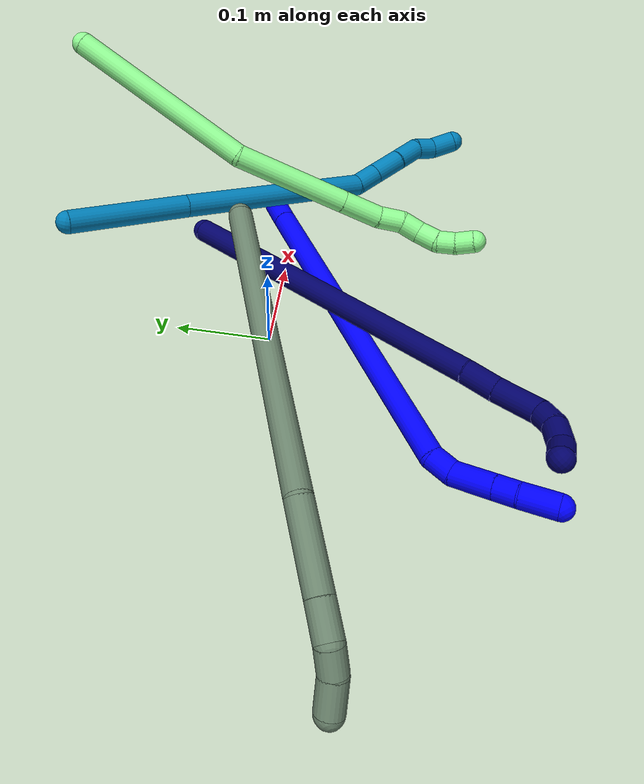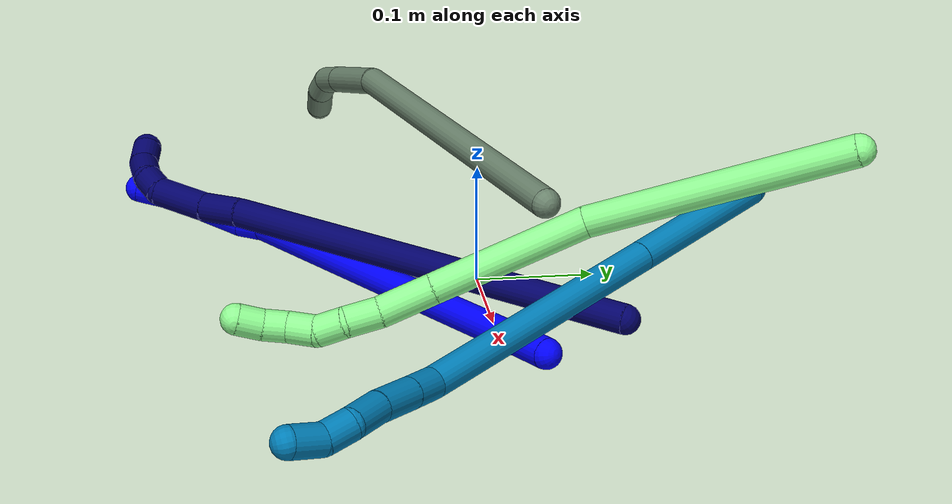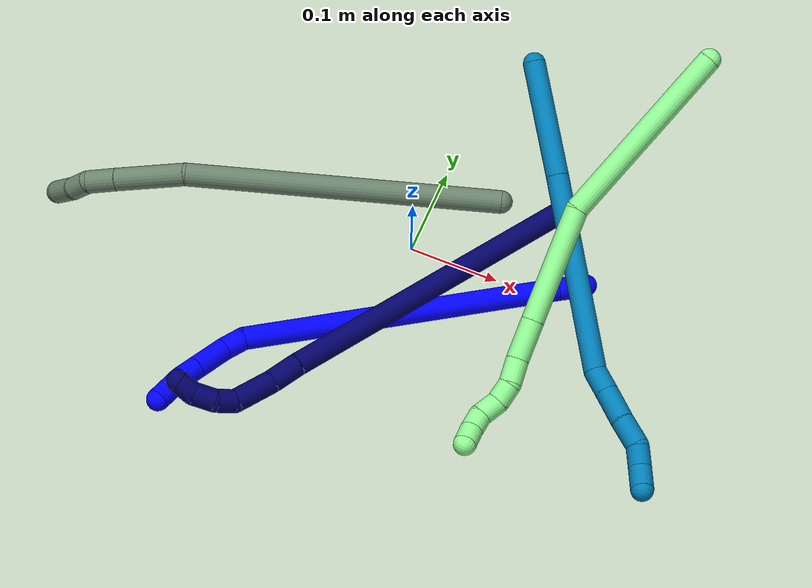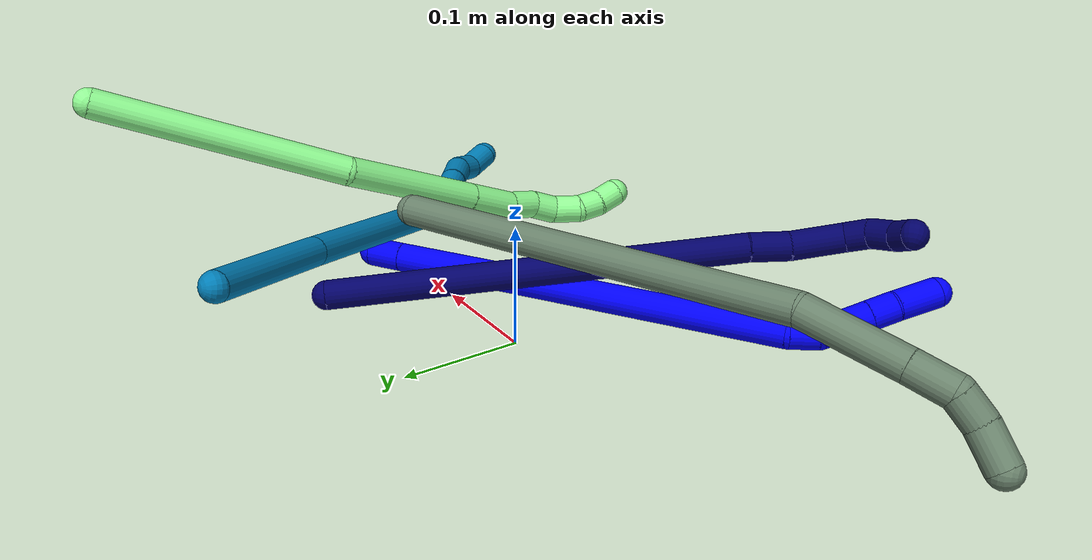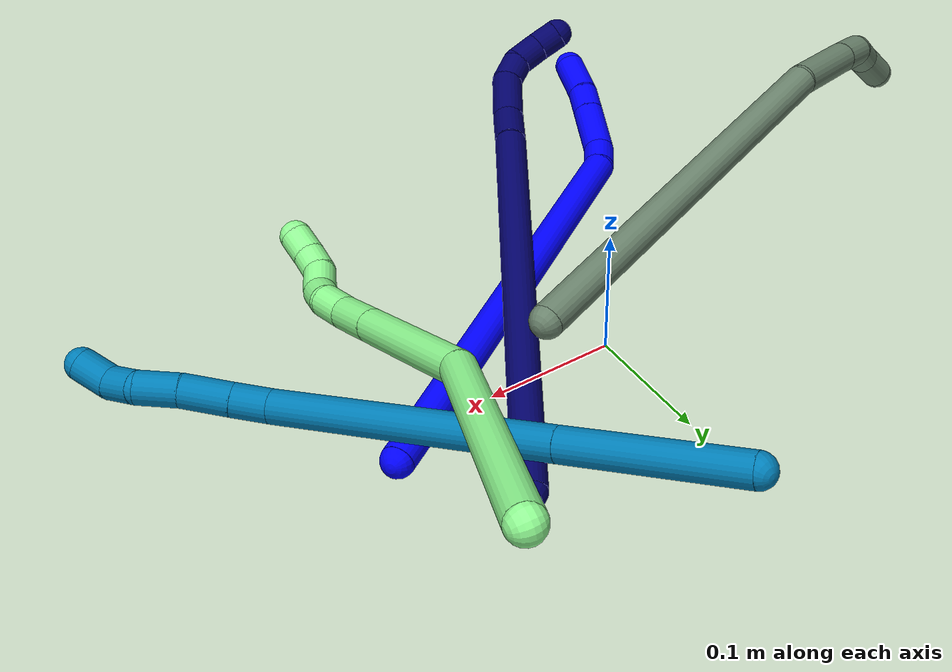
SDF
<sdf version="1.7">
 <world name="default">
  <model name="1">
   <static>0</static>
   <link name="1">
    <collision name="collision-cylinder-e_1_1_4">
     <pose>-0.002743 -0.00276 0.014344 0.190089 -0.18565 -0.017749</pose>
     <geometry><cylinder><radius>0.0125</radius><length>0.029725</length></cylinder></geometry>
     <surface>
      <friction><ode><mu>1.16</mu><mu2>1.16</mu2><slip1>0</slip1><slip2>0</slip2></ode></friction>
      <contact><ode><kp>1e+06</kp><kd>1</kd><max_vel>0</max_vel><min_depth>0.001</min_depth></ode></contact>
     </surface>
    </collision>
    <visual name="visual-cylinder-e_1_1_4">
     <pose>-0.002743 -0.00276 0.014344 0.190089 -0.18565 -0.017749</pose>
     <geometry><cylinder><radius>0.0125</radius><length>0.029725</length></cylinder></geometry>
     <material><ambient>0 0 1 1</ambient></material>
    </visual>
    <collision name="collision-cylinder-e_2_4_5">
     <pose>-0.038014 -0.034266 0.1955 0.170651 -0.189849 -0.016287</pose>
     <geometry><cylinder><radius>0.0125</radius><length>0.344736</length></cylinder></geometry>
     <surface>
      <friction><ode><mu>1.16</mu><mu2>1.16</mu2><slip1>0</slip1><slip2>0</slip2></ode></friction>
      <contact><ode><kp>1e+06</kp><kd>1</kd><max_vel>0</max_vel><min_depth>0.001</min_depth></ode></contact>
     </surface>
    </collision>
    <visual name="visual-cylinder-e_2_4_5">
     <pose>-0.038014 -0.034266 0.1955 0.170651 -0.189849 -0.016287</pose>
     <geometry><cylinder><radius>0.0125</radius><length>0.344736</length></cylinder></geometry>
     <material><ambient>0 0 1 1</ambient></material>
    </visual>
    <collision name="collision-cylinder-e_3_5_6">
     <pose>-0.074995 -0.061078 0.373693 -0.168332 -0.368171 0.031414</pose>
     <geometry><cylinder><radius>0.0125</radius><length>0.024744</length></cylinder></geometry>
     <surface>
      <friction><ode><mu>1.16</mu><mu2>1.16</mu2><slip1>0</slip1><slip2>0</slip2></ode></friction>
      <contact><ode><kp>1e+06</kp><kd>1</kd><max_vel>0</max_vel><min_depth>0.001</min_depth></ode></contact>
     </surface>
    </collision>
    <visual name="visual-cylinder-e_3_5_6">
     <pose>-0.074995 -0.061078 0.373693 -0.168332 -0.368171 0.031414</pose>
     <geometry><cylinder><radius>0.0125</radius><length>0.024744</length></cylinder></geometry>
     <material><ambient>0 0 1 1</ambient></material>
    </visual>
    <collision name="collision-cylinder-e_4_6_7">
     <pose>-0.093883 -0.055269 0.400102 -0.252387 -0.749143 0.099669</pose>
     <geometry><cylinder><radius>0.0125</radius><length>0.042393</length></cylinder></geometry>
     <surface>
      <friction><ode><mu>1.16</mu><mu2>1.16</mu2><slip1>0</slip1><slip2>0</slip2></ode></friction>
      <contact><ode><kp>1e+06</kp><kd>1</kd><max_vel>0</max_vel><min_depth>0.001</min_depth></ode></contact>
     </surface>
    </collision>
    <visual name="visual-cylinder-e_4_6_7">
     <pose>-0.093883 -0.055269 0.400102 -0.252387 -0.749143 0.099669</pose>
     <geometry><cylinder><radius>0.0125</radius><length>0.042393</length></cylinder></geometry>
     <material><ambient>0 0 1 1</ambient></material>
    </visual>
    <collision name="collision-cylinder-e_5_7_8">
     <pose>-0.115845 -0.049323 0.423038 -0.255995 -0.744322 0.100393</pose>
     <geometry><cylinder><radius>0.0125</radius><length>0.022222</length></cylinder></geometry>
     <surface>
      <friction><ode><mu>1.16</mu><mu2>1.16</mu2><slip1>0</slip1><slip2>0</slip2></ode></friction>
      <contact><ode><kp>1e+06</kp><kd>1</kd><max_vel>0</max_vel><min_depth>0.001</min_depth></ode></contact>
     </surface>
    </collision>
    <visual name="visual-cylinder-e_5_7_8">
     <pose>-0.115845 -0.049323 0.423038 -0.255995 -0.744322 0.100393</pose>
     <geometry><cylinder><radius>0.0125</radius><length>0.022222</length></cylinder></geometry>
     <material><ambient>0 0 1 1</ambient></material>
    </visual>
    <collision name="collision-cylinder-e_6_8_2">
     <pose>-0.134772 -0.04124 0.443638 -0.442454 -0.681776 0.159229</pose>
     <geometry><cylinder><radius>0.0125</radius><length>0.03618</length></cylinder></geometry>
     <surface>
      <friction><ode><mu>1.16</mu><mu2>1.16</mu2><slip1>0</slip1><slip2>0</slip2></ode></friction>
      <contact><ode><kp>1e+06</kp><kd>1</kd><max_vel>0</max_vel><min_depth>0.001</min_depth></ode></contact>
     </surface>
    </collision>
    <visual name="visual-cylinder-e_6_8_2">
     <pose>-0.134772 -0.04124 0.443638 -0.442454 -0.681776 0.159229</pose>
     <geometry><cylinder><radius>0.0125</radius><length>0.03618</length></cylinder></geometry>
     <material><ambient>0 0 1 1</ambient></material>
    </visual>
    <collision name="collision-sphere-2">
     <pose>-0.146172 -0.035226 0.456332 0 -0 0</pose>
     <geometry><sphere><radius>0.0125</radius></sphere></geometry>
     <surface>
      <friction><ode><mu>1.16</mu><mu2>1.16</mu2><slip1>0</slip1><slip2>0</slip2></ode></friction>
      <contact><ode><kp>1e+06</kp><kd>1</kd><max_vel>0</max_vel><min_depth>0.001</min_depth></ode></contact>
     </surface>
    </collision>
    <visual name="visual-sphere-2">
     <pose>-0.146172 -0.035226 0.456332 0 -0 0</pose>
     <geometry><sphere><radius>0.0125</radius></sphere></geometry>
     <material><ambient>0 0 1 1</ambient></material>
    </visual>
    <collision name="collision-sphere-4">
     <pose>-0.005487 -0.00552 0.028688 0 -0 0</pose>
     <geometry><sphere><radius>0.0125</radius></sphere></geometry>
     <surface>
      <friction><ode><mu>1.16</mu><mu2>1.16</mu2><slip1>0</slip1><slip2>0</slip2></ode></friction>
      <contact><ode><kp>1e+06</kp><kd>1</kd><max_vel>0</max_vel><min_depth>0.001</min_depth></ode></contact>
     </surface>
    </collision>
    <visual name="visual-sphere-4">
     <pose>-0.005487 -0.00552 0.028688 0 -0 0</pose>
     <geometry><sphere><radius>0.0125</radius></sphere></geometry>
     <material><ambient>0 0 1 1</ambient></material>
    </visual>
    <collision name="collision-sphere-1">
     <geometry><sphere><radius>0.0125</radius></sphere></geometry>
     <surface>
      <friction><ode><mu>1.16</mu><mu2>1.16</mu2><slip1>0</slip1><slip2>0</slip2></ode></friction>
      <contact><ode><kp>1e+06</kp><kd>1</kd><max_vel>0</max_vel><min_depth>0.001</min_depth></ode></contact>
     </surface>
    </collision>
    <visual name="visual-sphere-1">
     <geometry><sphere><radius>0.0125</radius></sphere></geometry>
     <material><ambient>0 0 1 1</ambient></material>
    </visual>
    <collision name="collision-sphere-8">
     <pose>-0.123372 -0.047254 0.430945 0 -0 0</pose>
     <geometry><sphere><radius>0.0125</radius></sphere></geometry>
     <surface>
      <friction><ode><mu>1.16</mu><mu2>1.16</mu2><slip1>0</slip1><slip2>0</slip2></ode></friction>
      <contact><ode><kp>1e+06</kp><kd>1</kd><max_vel>0</max_vel><min_depth>0.001</min_depth></ode></contact>
     </surface>
    </collision>
    <visual name="visual-sphere-8">
     <pose>-0.123372 -0.047254 0.430945 0 -0 0</pose>
     <geometry><sphere><radius>0.0125</radius></sphere></geometry>
     <material><ambient>0 0 1 1</ambient></material>
    </visual>
    <collision name="collision-sphere-5">
     <pose>-0.070542 -0.063012 0.362313 0 -0 0</pose>
     <geometry><sphere><radius>0.0125</radius></sphere></geometry>
     <surface>
      <friction><ode><mu>1.16</mu><mu2>1.16</mu2><slip1>0</slip1><slip2>0</slip2></ode></friction>
      <contact><ode><kp>1e+06</kp><kd>1</kd><max_vel>0</max_vel><min_depth>0.001</min_depth></ode></contact>
     </surface>
    </collision>
    <visual name="visual-sphere-5">
     <pose>-0.070542 -0.063012 0.362313 0 -0 0</pose>
     <geometry><sphere><radius>0.0125</radius></sphere></geometry>
     <material><ambient>0 0 1 1</ambient></material>
    </visual>
    <collision name="collision-sphere-6">
     <pose>-0.079448 -0.059145 0.385073 0 -0 0</pose>
     <geometry><sphere><radius>0.0125</radius></sphere></geometry>
     <surface>
      <friction><ode><mu>1.16</mu><mu2>1.16</mu2><slip1>0</slip1><slip2>0</slip2></ode></friction>
      <contact><ode><kp>1e+06</kp><kd>1</kd><max_vel>0</max_vel><min_depth>0.001</min_depth></ode></contact>
     </surface>
    </collision>
    <visual name="visual-sphere-6">
     <pose>-0.079448 -0.059145 0.385073 0 -0 0</pose>
     <geometry><sphere><radius>0.0125</radius></sphere></geometry>
     <material><ambient>0 0 1 1</ambient></material>
    </visual>
    <collision name="collision-sphere-7">
     <pose>-0.108318 -0.051393 0.415132 0 -0 0</pose>
     <geometry><sphere><radius>0.0125</radius></sphere></geometry>
     <surface>
      <friction><ode><mu>1.16</mu><mu2>1.16</mu2><slip1>0</slip1><slip2>0</slip2></ode></friction>
      <contact><ode><kp>1e+06</kp><kd>1</kd><max_vel>0</max_vel><min_depth>0.001</min_depth></ode></contact>
     </surface>
    </collision>
    <visual name="visual-sphere-7">
     <pose>-0.108318 -0.051393 0.415132 0 -0 0</pose>
     <geometry><sphere><radius>0.0125</radius></sphere></geometry>
     <material><ambient>0 0 1 1</ambient></material>
    </visual>
    <inertial>
     <pose>-0.052945 -0.036675 0.238964 0 -0 0</pose>
     <mass>0.5</mass>
     <inertia>
      <ixx>0.003317</ixx>
      <ixy>0</ixy>
      <ixz>0</ixz>
      <iyy>0.003343</iyy>
      <iyz>0</iyz>
      <izz>0.001262</izz>
     </inertia>
    </inertial>
   </link>
   <pose>0.19271 0.027213 0.011486 -2.02783 0.98077 1.80543</pose>
  </model>
  <model name="7">
   <static>0</static>
   <link name="7">
    <collision name="collision-cylinder-e_1_1_4">
     <pose>-0.07363 -0.146579 0.065295 1.15173 -0.430197 -0.281823</pose>
     <geometry><cylinder><radius>0.0125</radius><length>0.353101</length></cylinder></geometry>
     <surface>
      <friction><ode><mu>1.16</mu><mu2>1.16</mu2><slip1>0</slip1><slip2>0</slip2></ode></friction>
      <contact><ode><kp>1e+06</kp><kd>1</kd><max_vel>0</max_vel><min_depth>0.001</min_depth></ode></contact>
     </surface>
    </collision>
    <visual name="visual-cylinder-e_1_1_4">
     <pose>-0.07363 -0.146579 0.065295 1.15173 -0.430197 -0.281823</pose>
     <geometry><cylinder><radius>0.0125</radius><length>0.353101</length></cylinder></geometry>
     <material><ambient>0.003922 0 0.403922 1</ambient></material>
    </visual>
    <collision name="collision-cylinder-e_2_4_5">
     <pose>-0.153168 -0.308161 0.136035 1.22264 -0.354464 -0.249766</pose>
     <geometry><cylinder><radius>0.0125</radius><length>0.034038</length></cylinder></geometry>
     <surface>
      <friction><ode><mu>1.16</mu><mu2>1.16</mu2><slip1>0</slip1><slip2>0</slip2></ode></friction>
      <contact><ode><kp>1e+06</kp><kd>1</kd><max_vel>0</max_vel><min_depth>0.001</min_depth></ode></contact>
     </surface>
    </collision>
    <visual name="visual-cylinder-e_2_4_5">
     <pose>-0.153168 -0.308161 0.136035 1.22264 -0.354464 -0.249766</pose>
     <geometry><cylinder><radius>0.0125</radius><length>0.034038</length></cylinder></geometry>
     <material><ambient>0.003922 0 0.403922 1</ambient></material>
    </visual>
    <collision name="collision-cylinder-e_3_5_6">
     <pose>-0.169576 -0.341598 0.150615 1.1107 -0.471956 -0.296218</pose>
     <geometry><cylinder><radius>0.0125</radius><length>0.046196</length></cylinder></geometry>
     <surface>
      <friction><ode><mu>1.16</mu><mu2>1.16</mu2><slip1>0</slip1><slip2>0</slip2></ode></friction>
      <contact><ode><kp>1e+06</kp><kd>1</kd><max_vel>0</max_vel><min_depth>0.001</min_depth></ode></contact>
     </surface>
    </collision>
    <visual name="visual-cylinder-e_3_5_6">
     <pose>-0.169576 -0.341598 0.150615 1.1107 -0.471956 -0.296218</pose>
     <geometry><cylinder><radius>0.0125</radius><length>0.046196</length></cylinder></geometry>
     <material><ambient>0.003922 0 0.403922 1</ambient></material>
    </visual>
    <collision name="collision-cylinder-e_4_6_7">
     <pose>-0.188887 -0.365949 0.161822 1.23412 -0.952339 -0.701562</pose>
     <geometry><cylinder><radius>0.0125</radius><length>0.021626</length></cylinder></geometry>
     <surface>
      <friction><ode><mu>1.16</mu><mu2>1.16</mu2><slip1>0</slip1><slip2>0</slip2></ode></friction>
      <contact><ode><kp>1e+06</kp><kd>1</kd><max_vel>0</max_vel><min_depth>0.001</min_depth></ode></contact>
     </surface>
    </collision>
    <visual name="visual-cylinder-e_4_6_7">
     <pose>-0.188887 -0.365949 0.161822 1.23412 -0.952339 -0.701562</pose>
     <geometry><cylinder><radius>0.0125</radius><length>0.021626</length></cylinder></geometry>
     <material><ambient>0.003922 0 0.403922 1</ambient></material>
    </visual>
    <collision name="collision-cylinder-e_5_7_8">
     <pose>-0.208675 -0.376819 0.161959 1.94303 -1.11975 -1.48487</pose>
     <geometry><cylinder><radius>0.0125</radius><length>0.024397</length></cylinder></geometry>
     <surface>
      <friction><ode><mu>1.16</mu><mu2>1.16</mu2><slip1>0</slip1><slip2>0</slip2></ode></friction>
      <contact><ode><kp>1e+06</kp><kd>1</kd><max_vel>0</max_vel><min_depth>0.001</min_depth></ode></contact>
     </surface>
    </collision>
    <visual name="visual-cylinder-e_5_7_8">
     <pose>-0.208675 -0.376819 0.161959 1.94303 -1.11975 -1.48487</pose>
     <geometry><cylinder><radius>0.0125</radius><length>0.024397</length></cylinder></geometry>
     <material><ambient>0.003922 0 0.403922 1</ambient></material>
    </visual>
    <collision name="collision-cylinder-e_6_8_2">
     <pose>-0.229823 -0.382093 0.158293 2.95825 -1.39932 -2.92402</pose>
     <geometry><cylinder><radius>0.0125</radius><length>0.020642</length></cylinder></geometry>
     <surface>
      <friction><ode><mu>1.16</mu><mu2>1.16</mu2><slip1>0</slip1><slip2>0</slip2></ode></friction>
      <contact><ode><kp>1e+06</kp><kd>1</kd><max_vel>0</max_vel><min_depth>0.001</min_depth></ode></contact>
     </surface>
    </collision>
    <visual name="visual-cylinder-e_6_8_2">
     <pose>-0.229823 -0.382093 0.158293 2.95825 -1.39932 -2.92402</pose>
     <geometry><cylinder><radius>0.0125</radius><length>0.020642</length></cylinder></geometry>
     <material><ambient>0.003922 0 0.403922 1</ambient></material>
    </visual>
    <collision name="collision-sphere-2">
     <pose>-0.239993 -0.382414 0.156562 0 -0 0</pose>
     <geometry><sphere><radius>0.0125</radius></sphere></geometry>
     <surface>
      <friction><ode><mu>1.16</mu><mu2>1.16</mu2><slip1>0</slip1><slip2>0</slip2></ode></friction>
      <contact><ode><kp>1e+06</kp><kd>1</kd><max_vel>0</max_vel><min_depth>0.001</min_depth></ode></contact>
     </surface>
    </collision>
    <visual name="visual-sphere-2">
     <pose>-0.239993 -0.382414 0.156562 0 -0 0</pose>
     <geometry><sphere><radius>0.0125</radius></sphere></geometry>
     <material><ambient>0.003922 0 0.403922 1</ambient></material>
    </visual>
    <collision name="collision-sphere-4">
     <pose>-0.147261 -0.293157 0.13059 0 -0 0</pose>
     <geometry><sphere><radius>0.0125</radius></sphere></geometry>
     <surface>
      <friction><ode><mu>1.16</mu><mu2>1.16</mu2><slip1>0</slip1><slip2>0</slip2></ode></friction>
      <contact><ode><kp>1e+06</kp><kd>1</kd><max_vel>0</max_vel><min_depth>0.001</min_depth></ode></contact>
     </surface>
    </collision>
    <visual name="visual-sphere-4">
     <pose>-0.147261 -0.293157 0.13059 0 -0 0</pose>
     <geometry><sphere><radius>0.0125</radius></sphere></geometry>
     <material><ambient>0.003922 0 0.403922 1</ambient></material>
    </visual>
    <collision name="collision-sphere-1">
     <geometry><sphere><radius>0.0125</radius></sphere></geometry>
     <surface>
      <friction><ode><mu>1.16</mu><mu2>1.16</mu2><slip1>0</slip1><slip2>0</slip2></ode></friction>
      <contact><ode><kp>1e+06</kp><kd>1</kd><max_vel>0</max_vel><min_depth>0.001</min_depth></ode></contact>
     </surface>
    </collision>
    <visual name="visual-sphere-1">
     <geometry><sphere><radius>0.0125</radius></sphere></geometry>
     <material><ambient>0.003922 0 0.403922 1</ambient></material>
    </visual>
    <collision name="collision-sphere-8">
     <pose>-0.219654 -0.381772 0.160025 0 -0 0</pose>
     <geometry><sphere><radius>0.0125</radius></sphere></geometry>
     <surface>
      <friction><ode><mu>1.16</mu><mu2>1.16</mu2><slip1>0</slip1><slip2>0</slip2></ode></friction>
      <contact><ode><kp>1e+06</kp><kd>1</kd><max_vel>0</max_vel><min_depth>0.001</min_depth></ode></contact>
     </surface>
    </collision>
    <visual name="visual-sphere-8">
     <pose>-0.219654 -0.381772 0.160025 0 -0 0</pose>
     <geometry><sphere><radius>0.0125</radius></sphere></geometry>
     <material><ambient>0.003922 0 0.403922 1</ambient></material>
    </visual>
    <collision name="collision-sphere-5">
     <pose>-0.159075 -0.323164 0.14148 0 -0 0</pose>
     <geometry><sphere><radius>0.0125</radius></sphere></geometry>
     <surface>
      <friction><ode><mu>1.16</mu><mu2>1.16</mu2><slip1>0</slip1><slip2>0</slip2></ode></friction>
      <contact><ode><kp>1e+06</kp><kd>1</kd><max_vel>0</max_vel><min_depth>0.001</min_depth></ode></contact>
     </surface>
    </collision>
    <visual name="visual-sphere-5">
     <pose>-0.159075 -0.323164 0.14148 0 -0 0</pose>
     <geometry><sphere><radius>0.0125</radius></sphere></geometry>
     <material><ambient>0.003922 0 0.403922 1</ambient></material>
    </visual>
    <collision name="collision-sphere-6">
     <pose>-0.180077 -0.360031 0.159751 0 -0 0</pose>
     <geometry><sphere><radius>0.0125</radius></sphere></geometry>
     <surface>
      <friction><ode><mu>1.16</mu><mu2>1.16</mu2><slip1>0</slip1><slip2>0</slip2></ode></friction>
      <contact><ode><kp>1e+06</kp><kd>1</kd><max_vel>0</max_vel><min_depth>0.001</min_depth></ode></contact>
     </surface>
    </collision>
    <visual name="visual-sphere-6">
     <pose>-0.180077 -0.360031 0.159751 0 -0 0</pose>
     <geometry><sphere><radius>0.0125</radius></sphere></geometry>
     <material><ambient>0.003922 0 0.403922 1</ambient></material>
    </visual>
    <collision name="collision-sphere-7">
     <pose>-0.197697 -0.371866 0.163893 0 -0 0</pose>
     <geometry><sphere><radius>0.0125</radius></sphere></geometry>
     <surface>
      <friction><ode><mu>1.16</mu><mu2>1.16</mu2><slip1>0</slip1><slip2>0</slip2></ode></friction>
      <contact><ode><kp>1e+06</kp><kd>1</kd><max_vel>0</max_vel><min_depth>0.001</min_depth></ode></contact>
     </surface>
    </collision>
    <visual name="visual-sphere-7">
     <pose>-0.197697 -0.371866 0.163893 0 -0 0</pose>
     <geometry><sphere><radius>0.0125</radius></sphere></geometry>
     <material><ambient>0.003922 0 0.403922 1</ambient></material>
    </visual>
    <inertial>
     <pose>-0.105932 -0.206042 0.090724 0 -0 0</pose>
     <mass>0.5</mass>
     <inertia>
      <ixx>0.002273</ixx>
      <ixy>0</ixy>
      <ixz>0</ixz>
      <iyy>0.000875</iyy>
      <iyz>0</iyz>
      <izz>0.00463</izz>
     </inertia>
    </inertial>
   </link>
   <pose>0.135227 0.100573 0.012451 0.589956 0.614177 -0.099678</pose>
  </model>
  <model name="9">
   <static>0</static>
   <link name="9">
    <collision name="collision-cylinder-e_1_1_4">
     <pose>0.007299 -0.030876 -0.057668 2.65001 0.111116 0.436335</pose>
     <geometry><cylinder><radius>0.0125</radius><length>0.131639</length></cylinder></geometry>
     <surface>
      <friction><ode><mu>1.16</mu><mu2>1.16</mu2><slip1>0</slip1><slip2>0</slip2></ode></friction>
      <contact><ode><kp>1e+06</kp><kd>1</kd><max_vel>0</max_vel><min_depth>0.001</min_depth></ode></contact>
     </surface>
    </collision>
    <visual name="visual-cylinder-e_1_1_4">
     <pose>0.007299 -0.030876 -0.057668 2.65001 0.111116 0.436335</pose>
     <geometry><cylinder><radius>0.0125</radius><length>0.131639</length></cylinder></geometry>
     <material><ambient>0 0.490196 0.709804 1</ambient></material>
    </visual>
    <collision name="collision-cylinder-e_2_4_5">
     <pose>0.027194 -0.112168 -0.211964 2.66071 0.11507 0.461466</pose>
     <geometry><cylinder><radius>0.0125</radius><length>0.219429</length></cylinder></geometry>
     <surface>
      <friction><ode><mu>1.16</mu><mu2>1.16</mu2><slip1>0</slip1><slip2>0</slip2></ode></friction>
      <contact><ode><kp>1e+06</kp><kd>1</kd><max_vel>0</max_vel><min_depth>0.001</min_depth></ode></contact>
     </surface>
    </collision>
    <visual name="visual-cylinder-e_2_4_5">
     <pose>0.027194 -0.112168 -0.211964 2.66071 0.11507 0.461466</pose>
     <geometry><cylinder><radius>0.0125</radius><length>0.219429</length></cylinder></geometry>
     <material><ambient>0 0.490196 0.709804 1</ambient></material>
    </visual>
    <collision name="collision-cylinder-e_3_5_6">
     <pose>0.038097 -0.172436 -0.318547 2.36131 -0.120339 -0.290923</pose>
     <geometry><cylinder><radius>0.0125</radius><length>0.028219</length></cylinder></geometry>
     <surface>
      <friction><ode><mu>1.16</mu><mu2>1.16</mu2><slip1>0</slip1><slip2>0</slip2></ode></friction>
      <contact><ode><kp>1e+06</kp><kd>1</kd><max_vel>0</max_vel><min_depth>0.001</min_depth></ode></contact>
     </surface>
    </collision>
    <visual name="visual-cylinder-e_3_5_6">
     <pose>0.038097 -0.172436 -0.318547 2.36131 -0.120339 -0.290923</pose>
     <geometry><cylinder><radius>0.0125</radius><length>0.028219</length></cylinder></geometry>
     <material><ambient>0 0.490196 0.709804 1</ambient></material>
    </visual>
    <collision name="collision-cylinder-e_4_6_7">
     <pose>0.034009 -0.195136 -0.341736 2.37106 -0.129087 -0.316099</pose>
     <geometry><cylinder><radius>0.0125</radius><length>0.037197</length></cylinder></geometry>
     <surface>
      <friction><ode><mu>1.16</mu><mu2>1.16</mu2><slip1>0</slip1><slip2>0</slip2></ode></friction>
      <contact><ode><kp>1e+06</kp><kd>1</kd><max_vel>0</max_vel><min_depth>0.001</min_depth></ode></contact>
     </surface>
    </collision>
    <visual name="visual-cylinder-e_4_6_7">
     <pose>0.034009 -0.195136 -0.341736 2.37106 -0.129087 -0.316099</pose>
     <geometry><cylinder><radius>0.0125</radius><length>0.037197</length></cylinder></geometry>
     <material><ambient>0 0.490196 0.709804 1</ambient></material>
    </visual>
    <collision name="collision-cylinder-e_5_7_8">
     <pose>0.031075 -0.219801 -0.365964 2.32005 -0.033463 -0.076799</pose>
     <geometry><cylinder><radius>0.0125</radius><length>0.0323</length></cylinder></geometry>
     <surface>
      <friction><ode><mu>1.16</mu><mu2>1.16</mu2><slip1>0</slip1><slip2>0</slip2></ode></friction>
      <contact><ode><kp>1e+06</kp><kd>1</kd><max_vel>0</max_vel><min_depth>0.001</min_depth></ode></contact>
     </surface>
    </collision>
    <visual name="visual-cylinder-e_5_7_8">
     <pose>0.031075 -0.219801 -0.365964 2.32005 -0.033463 -0.076799</pose>
     <geometry><cylinder><radius>0.0125</radius><length>0.0323</length></cylinder></geometry>
     <material><ambient>0 0.490196 0.709804 1</ambient></material>
    </visual>
    <collision name="collision-cylinder-e_6_8_9">
     <pose>0.03191 -0.236229 -0.387868 2.74189 0.115583 0.556443</pose>
     <geometry><cylinder><radius>0.0125</radius><length>0.023849</length></cylinder></geometry>
     <surface>
      <friction><ode><mu>1.16</mu><mu2>1.16</mu2><slip1>0</slip1><slip2>0</slip2></ode></friction>
      <contact><ode><kp>1e+06</kp><kd>1</kd><max_vel>0</max_vel><min_depth>0.001</min_depth></ode></contact>
     </surface>
    </collision>
    <visual name="visual-cylinder-e_6_8_9">
     <pose>0.03191 -0.236229 -0.387868 2.74189 0.115583 0.556443</pose>
     <geometry><cylinder><radius>0.0125</radius><length>0.023849</length></cylinder></geometry>
     <material><ambient>0 0.490196 0.709804 1</ambient></material>
    </visual>
    <collision name="collision-cylinder-e_7_9_2">
     <pose>0.029225 -0.24615 -0.410719 2.72301 -0.301206 -1.24072</pose>
     <geometry><cylinder><radius>0.0125</radius><length>0.027367</length></cylinder></geometry>
     <surface>
      <friction><ode><mu>1.16</mu><mu2>1.16</mu2><slip1>0</slip1><slip2>0</slip2></ode></friction>
      <contact><ode><kp>1e+06</kp><kd>1</kd><max_vel>0</max_vel><min_depth>0.001</min_depth></ode></contact>
     </surface>
    </collision>
    <visual name="visual-cylinder-e_7_9_2">
     <pose>0.029225 -0.24615 -0.410719 2.72301 -0.301206 -1.24072</pose>
     <geometry><cylinder><radius>0.0125</radius><length>0.027367</length></cylinder></geometry>
     <material><ambient>0 0.490196 0.709804 1</ambient></material>
    </visual>
    <collision name="collision-sphere-2">
     <pose>0.025166 -0.251461 -0.422659 0 -0 0</pose>
     <geometry><sphere><radius>0.0125</radius></sphere></geometry>
     <surface>
      <friction><ode><mu>1.16</mu><mu2>1.16</mu2><slip1>0</slip1><slip2>0</slip2></ode></friction>
      <contact><ode><kp>1e+06</kp><kd>1</kd><max_vel>0</max_vel><min_depth>0.001</min_depth></ode></contact>
     </surface>
    </collision>
    <visual name="visual-sphere-2">
     <pose>0.025166 -0.251461 -0.422659 0 -0 0</pose>
     <geometry><sphere><radius>0.0125</radius></sphere></geometry>
     <material><ambient>0 0.490196 0.709804 1</ambient></material>
    </visual>
    <collision name="collision-sphere-9">
     <pose>0.033285 -0.240838 -0.39878 0 -0 0</pose>
     <geometry><sphere><radius>0.0125</radius></sphere></geometry>
     <surface>
      <friction><ode><mu>1.16</mu><mu2>1.16</mu2><slip1>0</slip1><slip2>0</slip2></ode></friction>
      <contact><ode><kp>1e+06</kp><kd>1</kd><max_vel>0</max_vel><min_depth>0.001</min_depth></ode></contact>
     </surface>
    </collision>
    <visual name="visual-sphere-9">
     <pose>0.033285 -0.240838 -0.39878 0 -0 0</pose>
     <geometry><sphere><radius>0.0125</radius></sphere></geometry>
     <material><ambient>0 0.490196 0.709804 1</ambient></material>
    </visual>
    <collision name="collision-sphere-4">
     <pose>0.014597 -0.061753 -0.115336 0 -0 0</pose>
     <geometry><sphere><radius>0.0125</radius></sphere></geometry>
     <surface>
      <friction><ode><mu>1.16</mu><mu2>1.16</mu2><slip1>0</slip1><slip2>0</slip2></ode></friction>
      <contact><ode><kp>1e+06</kp><kd>1</kd><max_vel>0</max_vel><min_depth>0.001</min_depth></ode></contact>
     </surface>
    </collision>
    <visual name="visual-sphere-4">
     <pose>0.014597 -0.061753 -0.115336 0 -0 0</pose>
     <geometry><sphere><radius>0.0125</radius></sphere></geometry>
     <material><ambient>0 0.490196 0.709804 1</ambient></material>
    </visual>
    <collision name="collision-sphere-1">
     <geometry><sphere><radius>0.0125</radius></sphere></geometry>
     <surface>
      <friction><ode><mu>1.16</mu><mu2>1.16</mu2><slip1>0</slip1><slip2>0</slip2></ode></friction>
      <contact><ode><kp>1e+06</kp><kd>1</kd><max_vel>0</max_vel><min_depth>0.001</min_depth></ode></contact>
     </surface>
    </collision>
    <visual name="visual-sphere-1">
     <geometry><sphere><radius>0.0125</radius></sphere></geometry>
     <material><ambient>0 0.490196 0.709804 1</ambient></material>
    </visual>
    <collision name="collision-sphere-8">
     <pose>0.030535 -0.231619 -0.376957 0 -0 0</pose>
     <geometry><sphere><radius>0.0125</radius></sphere></geometry>
     <surface>
      <friction><ode><mu>1.16</mu><mu2>1.16</mu2><slip1>0</slip1><slip2>0</slip2></ode></friction>
      <contact><ode><kp>1e+06</kp><kd>1</kd><max_vel>0</max_vel><min_depth>0.001</min_depth></ode></contact>
     </surface>
    </collision>
    <visual name="visual-sphere-8">
     <pose>0.030535 -0.231619 -0.376957 0 -0 0</pose>
     <geometry><sphere><radius>0.0125</radius></sphere></geometry>
     <material><ambient>0 0.490196 0.709804 1</ambient></material>
    </visual>
    <collision name="collision-sphere-5">
     <pose>0.039791 -0.162582 -0.308592 0 -0 0</pose>
     <geometry><sphere><radius>0.0125</radius></sphere></geometry>
     <surface>
      <friction><ode><mu>1.16</mu><mu2>1.16</mu2><slip1>0</slip1><slip2>0</slip2></ode></friction>
      <contact><ode><kp>1e+06</kp><kd>1</kd><max_vel>0</max_vel><min_depth>0.001</min_depth></ode></contact>
     </surface>
    </collision>
    <visual name="visual-sphere-5">
     <pose>0.039791 -0.162582 -0.308592 0 -0 0</pose>
     <geometry><sphere><radius>0.0125</radius></sphere></geometry>
     <material><ambient>0 0.490196 0.709804 1</ambient></material>
    </visual>
    <collision name="collision-sphere-6">
     <pose>0.036403 -0.18229 -0.328502 0 -0 0</pose>
     <geometry><sphere><radius>0.0125</radius></sphere></geometry>
     <surface>
      <friction><ode><mu>1.16</mu><mu2>1.16</mu2><slip1>0</slip1><slip2>0</slip2></ode></friction>
      <contact><ode><kp>1e+06</kp><kd>1</kd><max_vel>0</max_vel><min_depth>0.001</min_depth></ode></contact>
     </surface>
    </collision>
    <visual name="visual-sphere-6">
     <pose>0.036403 -0.18229 -0.328502 0 -0 0</pose>
     <geometry><sphere><radius>0.0125</radius></sphere></geometry>
     <material><ambient>0 0.490196 0.709804 1</ambient></material>
    </visual>
    <collision name="collision-sphere-7">
     <pose>0.031615 -0.207982 -0.35497 0 -0 0</pose>
     <geometry><sphere><radius>0.0125</radius></sphere></geometry>
     <surface>
      <friction><ode><mu>1.16</mu><mu2>1.16</mu2><slip1>0</slip1><slip2>0</slip2></ode></friction>
      <contact><ode><kp>1e+06</kp><kd>1</kd><max_vel>0</max_vel><min_depth>0.001</min_depth></ode></contact>
     </surface>
    </collision>
    <visual name="visual-sphere-7">
     <pose>0.031615 -0.207982 -0.35497 0 -0 0</pose>
     <geometry><sphere><radius>0.0125</radius></sphere></geometry>
     <material><ambient>0 0.490196 0.709804 1</ambient></material>
    </visual>
    <inertial>
     <pose>0.023665 -0.120543 -0.216228 0 -0 0</pose>
     <mass>0.5</mass>
     <inertia>
      <ixx>0.001454</ixx>
      <ixy>0</ixy>
      <ixz>0</ixz>
      <iyy>-0.000396</iyy>
      <iyz>0</iyz>
      <izz>0.000356</izz>
     </inertia>
    </inertial>
   </link>
   <pose>0.051857 0.221564 0.08835 -0.58183 1.35364 1.05296</pose>
  </model>
  <model name="13">
   <static>0</static>
   <link name="13">
    <collision name="collision-cylinder-e_1_1_4">
     <pose>0.009329 -0.103255 -0.023176 1.79159 0.087925 0.109809</pose>
     <geometry><cylinder><radius>0.0125</radius><length>0.212469</length></cylinder></geometry>
     <surface>
      <friction><ode><mu>1.16</mu><mu2>1.16</mu2><slip1>0</slip1><slip2>0</slip2></ode></friction>
      <contact><ode><kp>1e+06</kp><kd>1</kd><max_vel>0</max_vel><min_depth>0.001</min_depth></ode></contact>
     </surface>
    </collision>
    <visual name="visual-cylinder-e_1_1_4">
     <pose>0.009329 -0.103255 -0.023176 1.79159 0.087925 0.109809</pose>
     <geometry><cylinder><radius>0.0125</radius><length>0.212469</length></cylinder></geometry>
     <material><ambient>0.564706 0.984314 0.572549 1</ambient></material>
    </visual>
    <collision name="collision-cylinder-e_2_4_5">
     <pose>0.025142 -0.269135 -0.038291 1.44277 0.102338 0.090027</pose>
     <geometry><cylinder><radius>0.0125</radius><length>0.126946</length></cylinder></geometry>
     <surface>
      <friction><ode><mu>1.16</mu><mu2>1.16</mu2><slip1>0</slip1><slip2>0</slip2></ode></friction>
      <contact><ode><kp>1e+06</kp><kd>1</kd><max_vel>0</max_vel><min_depth>0.001</min_depth></ode></contact>
     </surface>
    </collision>
    <visual name="visual-cylinder-e_2_4_5">
     <pose>0.025142 -0.269135 -0.038291 1.44277 0.102338 0.090027</pose>
     <geometry><cylinder><radius>0.0125</radius><length>0.126946</length></cylinder></geometry>
     <material><ambient>0.564706 0.984314 0.572549 1</ambient></material>
    </visual>
    <collision name="collision-cylinder-e_3_5_6">
     <pose>0.033863 -0.353703 -0.027333 1.43957 0.100716 0.088314</pose>
     <geometry><cylinder><radius>0.0125</radius><length>0.044495</length></cylinder></geometry>
     <surface>
      <friction><ode><mu>1.16</mu><mu2>1.16</mu2><slip1>0</slip1><slip2>0</slip2></ode></friction>
      <contact><ode><kp>1e+06</kp><kd>1</kd><max_vel>0</max_vel><min_depth>0.001</min_depth></ode></contact>
     </surface>
    </collision>
    <visual name="visual-cylinder-e_3_5_6">
     <pose>0.033863 -0.353703 -0.027333 1.43957 0.100716 0.088314</pose>
     <geometry><cylinder><radius>0.0125</radius><length>0.044495</length></cylinder></geometry>
     <material><ambient>0.564706 0.984314 0.572549 1</ambient></material>
    </visual>
    <collision name="collision-cylinder-e_4_6_7">
     <pose>0.034923 -0.389025 -0.021454 1.35139 -0.085676 -0.06869</pose>
     <geometry><cylinder><radius>0.0125</radius><length>0.027513</length></cylinder></geometry>
     <surface>
      <friction><ode><mu>1.16</mu><mu2>1.16</mu2><slip1>0</slip1><slip2>0</slip2></ode></friction>
      <contact><ode><kp>1e+06</kp><kd>1</kd><max_vel>0</max_vel><min_depth>0.001</min_depth></ode></contact>
     </surface>
    </collision>
    <visual name="visual-cylinder-e_4_6_7">
     <pose>0.034923 -0.389025 -0.021454 1.35139 -0.085676 -0.06869</pose>
     <geometry><cylinder><radius>0.0125</radius><length>0.027513</length></cylinder></geometry>
     <material><ambient>0.564706 0.984314 0.572549 1</ambient></material>
    </visual>
    <collision name="collision-cylinder-e_5_7_8">
     <pose>0.034835 -0.413844 -0.019445 1.65571 0.094556 0.102932</pose>
     <geometry><cylinder><radius>0.0125</radius><length>0.023068</length></cylinder></geometry>
     <surface>
      <friction><ode><mu>1.16</mu><mu2>1.16</mu2><slip1>0</slip1><slip2>0</slip2></ode></friction>
      <contact><ode><kp>1e+06</kp><kd>1</kd><max_vel>0</max_vel><min_depth>0.001</min_depth></ode></contact>
     </surface>
    </collision>
    <visual name="visual-cylinder-e_5_7_8">
     <pose>0.034835 -0.413844 -0.019445 1.65571 0.094556 0.102932</pose>
     <geometry><cylinder><radius>0.0125</radius><length>0.023068</length></cylinder></geometry>
     <material><ambient>0.564706 0.984314 0.572549 1</ambient></material>
    </visual>
    <collision name="collision-cylinder-e_6_8_9">
     <pose>0.033055 -0.436298 -0.02483 1.95181 -0.237263 -0.348713</pose>
     <geometry><cylinder><radius>0.0125</radius><length>0.024411</length></cylinder></geometry>
     <surface>
      <friction><ode><mu>1.16</mu><mu2>1.16</mu2><slip1>0</slip1><slip2>0</slip2></ode></friction>
      <contact><ode><kp>1e+06</kp><kd>1</kd><max_vel>0</max_vel><min_depth>0.001</min_depth></ode></contact>
     </surface>
    </collision>
    <visual name="visual-cylinder-e_6_8_9">
     <pose>0.033055 -0.436298 -0.02483 1.95181 -0.237263 -0.348713</pose>
     <geometry><cylinder><radius>0.0125</radius><length>0.024411</length></cylinder></geometry>
     <material><ambient>0.564706 0.984314 0.572549 1</ambient></material>
    </visual>
    <collision name="collision-cylinder-e_7_9_10">
     <pose>0.02629 -0.456577 -0.02913 1.55874 -0.397961 -0.393315</pose>
     <geometry><cylinder><radius>0.0125</radius><length>0.020104</length></cylinder></geometry>
     <surface>
      <friction><ode><mu>1.16</mu><mu2>1.16</mu2><slip1>0</slip1><slip2>0</slip2></ode></friction>
      <contact><ode><kp>1e+06</kp><kd>1</kd><max_vel>0</max_vel><min_depth>0.001</min_depth></ode></contact>
     </surface>
    </collision>
    <visual name="visual-cylinder-e_7_9_10">
     <pose>0.02629 -0.456577 -0.02913 1.55874 -0.397961 -0.393315</pose>
     <geometry><cylinder><radius>0.0125</radius><length>0.020104</length></cylinder></geometry>
     <material><ambient>0.564706 0.984314 0.572549 1</ambient></material>
    </visual>
    <collision name="collision-cylinder-e_8_10_2">
     <pose>0.016576 -0.474505 -0.027883 1.44051 -0.587534 -0.518965</pose>
     <geometry><cylinder><radius>0.0125</radius><length>0.020993</length></cylinder></geometry>
     <surface>
      <friction><ode><mu>1.16</mu><mu2>1.16</mu2><slip1>0</slip1><slip2>0</slip2></ode></friction>
      <contact><ode><kp>1e+06</kp><kd>1</kd><max_vel>0</max_vel><min_depth>0.001</min_depth></ode></contact>
     </surface>
    </collision>
    <visual name="visual-cylinder-e_8_10_2">
     <pose>0.016576 -0.474505 -0.027883 1.44051 -0.587534 -0.518965</pose>
     <geometry><cylinder><radius>0.0125</radius><length>0.020993</length></cylinder></geometry>
     <material><ambient>0.564706 0.984314 0.572549 1</ambient></material>
    </visual>
    <collision name="collision-sphere-2">
     <pose>0.010758 -0.483167 -0.026748 0 -0 0</pose>
     <geometry><sphere><radius>0.0125</radius></sphere></geometry>
     <surface>
      <friction><ode><mu>1.16</mu><mu2>1.16</mu2><slip1>0</slip1><slip2>0</slip2></ode></friction>
      <contact><ode><kp>1e+06</kp><kd>1</kd><max_vel>0</max_vel><min_depth>0.001</min_depth></ode></contact>
     </surface>
    </collision>
    <visual name="visual-sphere-2">
     <pose>0.010758 -0.483167 -0.026748 0 -0 0</pose>
     <geometry><sphere><radius>0.0125</radius></sphere></geometry>
     <material><ambient>0.564706 0.984314 0.572549 1</ambient></material>
    </visual>
    <collision name="collision-sphere-10">
     <pose>0.022395 -0.465843 -0.029018 0 -0 0</pose>
     <geometry><sphere><radius>0.0125</radius></sphere></geometry>
     <surface>
      <friction><ode><mu>1.16</mu><mu2>1.16</mu2><slip1>0</slip1><slip2>0</slip2></ode></friction>
      <contact><ode><kp>1e+06</kp><kd>1</kd><max_vel>0</max_vel><min_depth>0.001</min_depth></ode></contact>
     </surface>
    </collision>
    <visual name="visual-sphere-10">
     <pose>0.022395 -0.465843 -0.029018 0 -0 0</pose>
     <geometry><sphere><radius>0.0125</radius></sphere></geometry>
     <material><ambient>0.564706 0.984314 0.572549 1</ambient></material>
    </visual>
    <collision name="collision-sphere-9">
     <pose>0.030186 -0.447311 -0.029242 0 -0 0</pose>
     <geometry><sphere><radius>0.0125</radius></sphere></geometry>
     <surface>
      <friction><ode><mu>1.16</mu><mu2>1.16</mu2><slip1>0</slip1><slip2>0</slip2></ode></friction>
      <contact><ode><kp>1e+06</kp><kd>1</kd><max_vel>0</max_vel><min_depth>0.001</min_depth></ode></contact>
     </surface>
    </collision>
    <visual name="visual-sphere-9">
     <pose>0.030186 -0.447311 -0.029242 0 -0 0</pose>
     <geometry><sphere><radius>0.0125</radius></sphere></geometry>
     <material><ambient>0.564706 0.984314 0.572549 1</ambient></material>
    </visual>
    <collision name="collision-sphere-4">
     <pose>0.018657 -0.206511 -0.046352 0 -0 0</pose>
     <geometry><sphere><radius>0.0125</radius></sphere></geometry>
     <surface>
      <friction><ode><mu>1.16</mu><mu2>1.16</mu2><slip1>0</slip1><slip2>0</slip2></ode></friction>
      <contact><ode><kp>1e+06</kp><kd>1</kd><max_vel>0</max_vel><min_depth>0.001</min_depth></ode></contact>
     </surface>
    </collision>
    <visual name="visual-sphere-4">
     <pose>0.018657 -0.206511 -0.046352 0 -0 0</pose>
     <geometry><sphere><radius>0.0125</radius></sphere></geometry>
     <material><ambient>0.564706 0.984314 0.572549 1</ambient></material>
    </visual>
    <collision name="collision-sphere-1">
     <geometry><sphere><radius>0.0125</radius></sphere></geometry>
     <surface>
      <friction><ode><mu>1.16</mu><mu2>1.16</mu2><slip1>0</slip1><slip2>0</slip2></ode></friction>
      <contact><ode><kp>1e+06</kp><kd>1</kd><max_vel>0</max_vel><min_depth>0.001</min_depth></ode></contact>
     </surface>
    </collision>
    <visual name="visual-sphere-1">
     <geometry><sphere><radius>0.0125</radius></sphere></geometry>
     <material><ambient>0.564706 0.984314 0.572549 1</ambient></material>
    </visual>
    <collision name="collision-sphere-8">
     <pose>0.035924 -0.425285 -0.020419 0 -0 0</pose>
     <geometry><sphere><radius>0.0125</radius></sphere></geometry>
     <surface>
      <friction><ode><mu>1.16</mu><mu2>1.16</mu2><slip1>0</slip1><slip2>0</slip2></ode></friction>
      <contact><ode><kp>1e+06</kp><kd>1</kd><max_vel>0</max_vel><min_depth>0.001</min_depth></ode></contact>
     </surface>
    </collision>
    <visual name="visual-sphere-8">
     <pose>0.035924 -0.425285 -0.020419 0 -0 0</pose>
     <geometry><sphere><radius>0.0125</radius></sphere></geometry>
     <material><ambient>0.564706 0.984314 0.572549 1</ambient></material>
    </visual>
    <collision name="collision-sphere-5">
     <pose>0.031626 -0.331759 -0.03023 0 -0 0</pose>
     <geometry><sphere><radius>0.0125</radius></sphere></geometry>
     <surface>
      <friction><ode><mu>1.16</mu><mu2>1.16</mu2><slip1>0</slip1><slip2>0</slip2></ode></friction>
      <contact><ode><kp>1e+06</kp><kd>1</kd><max_vel>0</max_vel><min_depth>0.001</min_depth></ode></contact>
     </surface>
    </collision>
    <visual name="visual-sphere-5">
     <pose>0.031626 -0.331759 -0.03023 0 -0 0</pose>
     <geometry><sphere><radius>0.0125</radius></sphere></geometry>
     <material><ambient>0.564706 0.984314 0.572549 1</ambient></material>
    </visual>
    <collision name="collision-sphere-6">
     <pose>0.0361 -0.375648 -0.024437 0 -0 0</pose>
     <geometry><sphere><radius>0.0125</radius></sphere></geometry>
     <surface>
      <friction><ode><mu>1.16</mu><mu2>1.16</mu2><slip1>0</slip1><slip2>0</slip2></ode></friction>
      <contact><ode><kp>1e+06</kp><kd>1</kd><max_vel>0</max_vel><min_depth>0.001</min_depth></ode></contact>
     </surface>
    </collision>
    <visual name="visual-sphere-6">
     <pose>0.0361 -0.375648 -0.024437 0 -0 0</pose>
     <geometry><sphere><radius>0.0125</radius></sphere></geometry>
     <material><ambient>0.564706 0.984314 0.572549 1</ambient></material>
    </visual>
    <collision name="collision-sphere-7">
     <pose>0.033746 -0.402403 -0.018471 0 -0 0</pose>
     <geometry><sphere><radius>0.0125</radius></sphere></geometry>
     <surface>
      <friction><ode><mu>1.16</mu><mu2>1.16</mu2><slip1>0</slip1><slip2>0</slip2></ode></friction>
      <contact><ode><kp>1e+06</kp><kd>1</kd><max_vel>0</max_vel><min_depth>0.001</min_depth></ode></contact>
     </surface>
    </collision>
    <visual name="visual-sphere-7">
     <pose>0.033746 -0.402403 -0.018471 0 -0 0</pose>
     <geometry><sphere><radius>0.0125</radius></sphere></geometry>
     <material><ambient>0.564706 0.984314 0.572549 1</ambient></material>
    </visual>
    <inertial>
     <pose>0.020257 -0.243766 -0.027635 0 -0 0</pose>
     <mass>0.5</mass>
     <inertia>
      <ixx>0.001095</ixx>
      <ixy>0</ixy>
      <ixz>0</ixz>
      <iyy>-7.7e-05</iyy>
      <iyz>0</iyz>
      <izz>0.000886</izz>
     </inertia>
    </inertial>
   </link>
   <pose>0.237353 0.246816 0.178286 1.87328 1.26855 1.74938</pose>
  </model>
  <model name="17">
   <static>0</static>
   <link name="17">
    <collision name="collision-cylinder-e_1_1_4">
     <pose>-4.6e-05 -0.000263 0.169017 0.001555 -0.000274 0</pose>
     <geometry><cylinder><radius>0.0125</radius><length>0.338035</length></cylinder></geometry>
     <surface>
      <friction><ode><mu>1.16</mu><mu2>1.16</mu2><slip1>0</slip1><slip2>0</slip2></ode></friction>
      <contact><ode><kp>1e+06</kp><kd>1</kd><max_vel>0</max_vel><min_depth>0.001</min_depth></ode></contact>
     </surface>
    </collision>
    <visual name="visual-cylinder-e_1_1_4">
     <pose>-4.6e-05 -0.000263 0.169017 0.001555 -0.000274 0</pose>
     <geometry><cylinder><radius>0.0125</radius><length>0.338035</length></cylinder></geometry>
     <material><ambient>0.415686 0.509804 0.423529 1</ambient></material>
    </visual>
    <collision name="collision-cylinder-e_2_4_5">
     <pose>0.002228 0.009371 0.374888 -0.262356 0.060735 -0.008016</pose>
     <geometry><cylinder><radius>0.0125</radius><length>0.076461</length></cylinder></geometry>
     <surface>
      <friction><ode><mu>1.16</mu><mu2>1.16</mu2><slip1>0</slip1><slip2>0</slip2></ode></friction>
      <contact><ode><kp>1e+06</kp><kd>1</kd><max_vel>0</max_vel><min_depth>0.001</min_depth></ode></contact>
     </surface>
    </collision>
    <visual name="visual-cylinder-e_2_4_5">
     <pose>0.002228 0.009371 0.374888 -0.262356 0.060735 -0.008016</pose>
     <geometry><cylinder><radius>0.0125</radius><length>0.076461</length></cylinder></geometry>
     <material><ambient>0.415686 0.509804 0.423529 1</ambient></material>
    </visual>
    <collision name="collision-cylinder-e_3_5_6">
     <pose>0.005722 0.023918 0.427124 -0.293532 0.072901 -0.010781</pose>
     <geometry><cylinder><radius>0.0125</radius><length>0.032223</length></cylinder></geometry>
     <surface>
      <friction><ode><mu>1.16</mu><mu2>1.16</mu2><slip1>0</slip1><slip2>0</slip2></ode></friction>
      <contact><ode><kp>1e+06</kp><kd>1</kd><max_vel>0</max_vel><min_depth>0.001</min_depth></ode></contact>
     </surface>
    </collision>
    <visual name="visual-cylinder-e_3_5_6">
     <pose>0.005722 0.023918 0.427124 -0.293532 0.072901 -0.010781</pose>
     <geometry><cylinder><radius>0.0125</radius><length>0.032223</length></cylinder></geometry>
     <material><ambient>0.415686 0.509804 0.423529 1</ambient></material>
    </visual>
    <collision name="collision-cylinder-e_4_6_7">
     <pose>0.009746 0.036618 0.450471 -0.790706 0.246566 -0.103331</pose>
     <geometry><cylinder><radius>0.0125</radius><length>0.023358</length></cylinder></geometry>
     <surface>
      <friction><ode><mu>1.16</mu><mu2>1.16</mu2><slip1>0</slip1><slip2>0</slip2></ode></friction>
      <contact><ode><kp>1e+06</kp><kd>1</kd><max_vel>0</max_vel><min_depth>0.001</min_depth></ode></contact>
     </surface>
    </collision>
    <visual name="visual-cylinder-e_4_6_7">
     <pose>0.009746 0.036618 0.450471 -0.790706 0.246566 -0.103331</pose>
     <geometry><cylinder><radius>0.0125</radius><length>0.023358</length></cylinder></geometry>
     <material><ambient>0.415686 0.509804 0.423529 1</ambient></material>
    </visual>
    <collision name="collision-cylinder-e_5_7_2">
     <pose>0.019512 0.054238 0.467627 -0.805623 0.480478 -0.208016</pose>
     <geometry><cylinder><radius>0.0125</radius><length>0.029924</length></cylinder></geometry>
     <surface>
      <friction><ode><mu>1.16</mu><mu2>1.16</mu2><slip1>0</slip1><slip2>0</slip2></ode></friction>
      <contact><ode><kp>1e+06</kp><kd>1</kd><max_vel>0</max_vel><min_depth>0.001</min_depth></ode></contact>
     </surface>
    </collision>
    <visual name="visual-cylinder-e_5_7_2">
     <pose>0.019512 0.054238 0.467627 -0.805623 0.480478 -0.208016</pose>
     <geometry><cylinder><radius>0.0125</radius><length>0.029924</length></cylinder></geometry>
     <material><ambient>0.415686 0.509804 0.423529 1</ambient></material>
    </visual>
    <collision name="collision-sphere-2">
     <pose>0.026427 0.063808 0.476817 0 -0 0</pose>
     <geometry><sphere><radius>0.0125</radius></sphere></geometry>
     <surface>
      <friction><ode><mu>1.16</mu><mu2>1.16</mu2><slip1>0</slip1><slip2>0</slip2></ode></friction>
      <contact><ode><kp>1e+06</kp><kd>1</kd><max_vel>0</max_vel><min_depth>0.001</min_depth></ode></contact>
     </surface>
    </collision>
    <visual name="visual-sphere-2">
     <pose>0.026427 0.063808 0.476817 0 -0 0</pose>
     <geometry><sphere><radius>0.0125</radius></sphere></geometry>
     <material><ambient>0.415686 0.509804 0.423529 1</ambient></material>
    </visual>
    <collision name="collision-sphere-7">
     <pose>0.012596 0.044669 0.458437 0 -0 0</pose>
     <geometry><sphere><radius>0.0125</radius></sphere></geometry>
     <surface>
      <friction><ode><mu>1.16</mu><mu2>1.16</mu2><slip1>0</slip1><slip2>0</slip2></ode></friction>
      <contact><ode><kp>1e+06</kp><kd>1</kd><max_vel>0</max_vel><min_depth>0.001</min_depth></ode></contact>
     </surface>
    </collision>
    <visual name="visual-sphere-7">
     <pose>0.012596 0.044669 0.458437 0 -0 0</pose>
     <geometry><sphere><radius>0.0125</radius></sphere></geometry>
     <material><ambient>0.415686 0.509804 0.423529 1</ambient></material>
    </visual>
    <collision name="collision-sphere-6">
     <pose>0.006895 0.028567 0.442505 0 -0 0</pose>
     <geometry><sphere><radius>0.0125</radius></sphere></geometry>
     <surface>
      <friction><ode><mu>1.16</mu><mu2>1.16</mu2><slip1>0</slip1><slip2>0</slip2></ode></friction>
      <contact><ode><kp>1e+06</kp><kd>1</kd><max_vel>0</max_vel><min_depth>0.001</min_depth></ode></contact>
     </surface>
    </collision>
    <visual name="visual-sphere-6">
     <pose>0.006895 0.028567 0.442505 0 -0 0</pose>
     <geometry><sphere><radius>0.0125</radius></sphere></geometry>
     <material><ambient>0.415686 0.509804 0.423529 1</ambient></material>
    </visual>
    <collision name="collision-sphere-5">
     <pose>0.004548 0.019268 0.411743 0 -0 0</pose>
     <geometry><sphere><radius>0.0125</radius></sphere></geometry>
     <surface>
      <friction><ode><mu>1.16</mu><mu2>1.16</mu2><slip1>0</slip1><slip2>0</slip2></ode></friction>
      <contact><ode><kp>1e+06</kp><kd>1</kd><max_vel>0</max_vel><min_depth>0.001</min_depth></ode></contact>
     </surface>
    </collision>
    <visual name="visual-sphere-5">
     <pose>0.004548 0.019268 0.411743 0 -0 0</pose>
     <geometry><sphere><radius>0.0125</radius></sphere></geometry>
     <material><ambient>0.415686 0.509804 0.423529 1</ambient></material>
    </visual>
    <collision name="collision-sphere-1">
     <geometry><sphere><radius>0.0125</radius></sphere></geometry>
     <surface>
      <friction><ode><mu>1.16</mu><mu2>1.16</mu2><slip1>0</slip1><slip2>0</slip2></ode></friction>
      <contact><ode><kp>1e+06</kp><kd>1</kd><max_vel>0</max_vel><min_depth>0.001</min_depth></ode></contact>
     </surface>
    </collision>
    <visual name="visual-sphere-1">
     <geometry><sphere><radius>0.0125</radius></sphere></geometry>
     <material><ambient>0.415686 0.509804 0.423529 1</ambient></material>
    </visual>
    <collision name="collision-sphere-4">
     <pose>-9.3e-05 -0.000526 0.338034 0 -0 0</pose>
     <geometry><sphere><radius>0.0125</radius></sphere></geometry>
     <surface>
      <friction><ode><mu>1.16</mu><mu2>1.16</mu2><slip1>0</slip1><slip2>0</slip2></ode></friction>
      <contact><ode><kp>1e+06</kp><kd>1</kd><max_vel>0</max_vel><min_depth>0.001</min_depth></ode></contact>
     </surface>
    </collision>
    <visual name="visual-sphere-4">
     <pose>-9.3e-05 -0.000526 0.338034 0 -0 0</pose>
     <geometry><sphere><radius>0.0125</radius></sphere></geometry>
     <material><ambient>0.415686 0.509804 0.423529 1</ambient></material>
    </visual>
    <inertial>
     <pose>0.002301 0.007753 0.248153 0 -0 0</pose>
     <mass>0.5</mass>
     <inertia>
      <ixx>0.003282</ixx>
      <ixy>0</ixy>
      <ixz>0</ixz>
      <iyy>0.003283</iyy>
      <iyz>0</iyz>
      <izz>2.3e-05</izz>
     </inertia>
    </inertial>
   </link>
   <pose>0.083965 0.0439 0.095024 -1.51071 0.349439 1.92759</pose>
  </model>
 </world>
</sdf>
